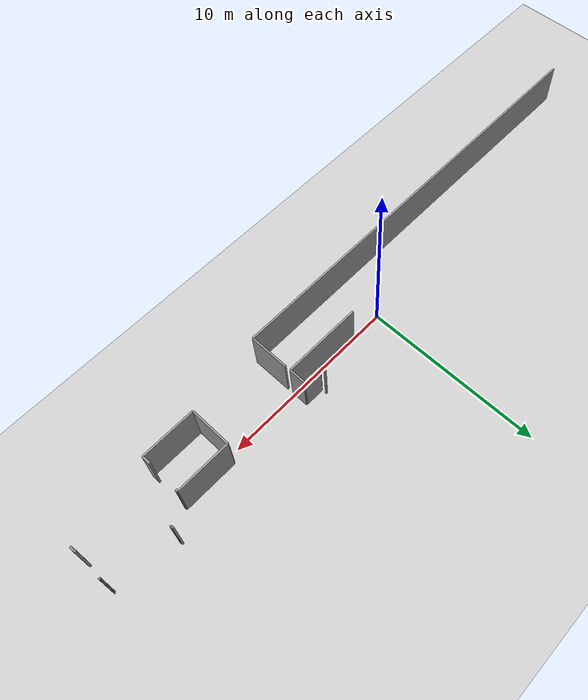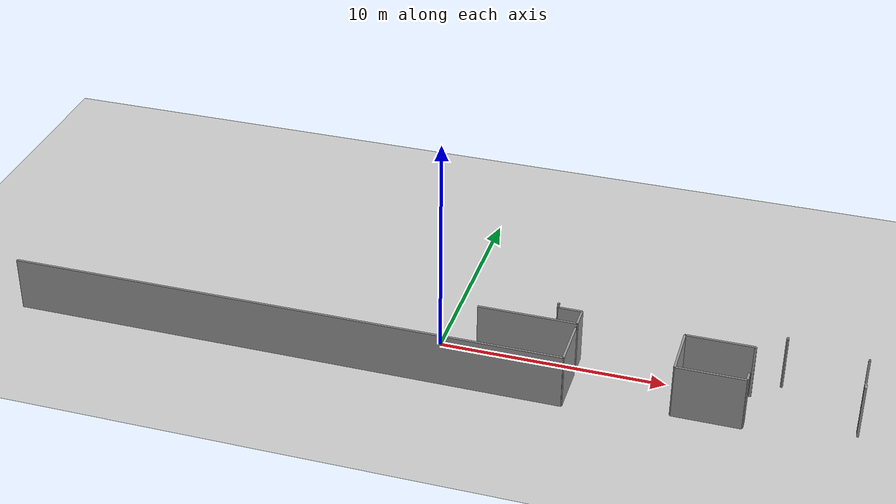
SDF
<sdf version="1.6">
 <world name="default">
  <model name="ground_plane">
   <static>1</static>
   <link name="link">
    <collision name="collision">
     <geometry><plane><normal>0 0 1</normal><size>100 100</size></plane></geometry>
     <surface><friction><ode><mu>100</mu><mu2>50</mu2></ode></friction></surface>
    </collision>
    <visual name="visual">
     <cast_shadows>0</cast_shadows>
     <geometry><plane><normal>0 0 1</normal><size>100 100</size></plane></geometry>
     <material>
      <script><uri>file://media/materials/scripts/gazebo.material</uri><name>Gazebo/Grey</name></script>
     </material>
    </visual>
   </link>
  </model>
  <model name="0510032259_A_40_1_101">
   <static>1</static>
   <link name="Wall_77">
    <collision name="Wall_77_Collision">
     <geometry><box><size>0.0627612404873 0.1 2.5</size></box></geometry>
     <pose>0.0313806202437 0 1.25 0 0 0</pose>
    </collision>
    <visual name="Wall_77_Visual">
     <pose>0.0313806202437 0 1.25 0 0 0</pose>
     <geometry><box><size>0.0627612404873 0.1 2.5</size></box></geometry>
     <material>
      <script><uri>file://media/materials/scripts/gazebo.material</uri><name>Gazebo/Grey</name></script>
      <ambient>1 1 1 1</ambient>
     </material>
    </visual>
    <pose>44.9132903914 -19.7528934965 0 0 0 3.14159265359</pose>
   </link>
   <link name="Wall_78">
    <collision name="Wall_78_Collision">
     <geometry><box><size>0.140005844164 0.1 2.5</size></box></geometry>
     <pose>0.070002922082 0 1.25 0 0 0</pose>
    </collision>
    <visual name="Wall_78_Visual">
     <pose>0.070002922082 0 1.25 0 0 0</pose>
     <geometry><box><size>0.140005844164 0.1 2.5</size></box></geometry>
     <material>
      <script><uri>file://media/materials/scripts/gazebo.material</uri><name>Gazebo/Grey</name></script>
      <ambient>1 1 1 1</ambient>
     </material>
    </visual>
    <pose>44.8505291509 -19.7528934965 0 0 0 1.57079632679</pose>
   </link>
   <link name="Wall_87">
    <collision name="Wall_87_Collision">
     <geometry><box><size>0.0895681670923 0.1 2.5</size></box></geometry>
     <pose>0.0447840835461 0 1.25 0 0 0</pose>
    </collision>
    <visual name="Wall_87_Visual">
     <pose>0.0447840835461 0 1.25 0 0 0</pose>
     <geometry><box><size>0.0895681670923 0.1 2.5</size></box></geometry>
     <material>
      <script><uri>file://media/materials/scripts/gazebo.material</uri><name>Gazebo/Grey</name></script>
      <ambient>1 1 1 1</ambient>
     </material>
    </visual>
    <pose>35.1539174956 -20.0020327527 0 0 0 3.14159265359</pose>
   </link>
   <link name="Wall_294">
    <collision name="Wall_294_Collision">
     <geometry><box><size>0.0168972570543 0.1 2.5</size></box></geometry>
     <pose>0.00844862852714 0 1.25 0 0 0</pose>
    </collision>
    <visual name="Wall_294_Visual">
     <pose>0.00844862852714 0 1.25 0 0 0</pose>
     <geometry><box><size>0.0168972570543 0.1 2.5</size></box></geometry>
     <material>
      <script><uri>file://media/materials/scripts/gazebo.material</uri><name>Gazebo/Grey</name></script>
      <ambient>1 1 1 1</ambient>
     </material>
    </visual>
    <pose>35.1555691072 -20.2709913481 0 0 0 -1.57079632679</pose>
   </link>
   <link name="Wall_295">
    <collision name="Wall_295_Collision">
     <geometry><box><size>1.04597832577 0.1 2.5</size></box></geometry>
     <pose>0.522989162887 0 1.25 0 0 0</pose>
    </collision>
    <visual name="Wall_295_Visual">
     <pose>0.522989162887 0 1.25 0 0 0</pose>
     <geometry><box><size>1.04597832577 0.1 2.5</size></box></geometry>
     <material>
      <script><uri>file://media/materials/scripts/gazebo.material</uri><name>Gazebo/Grey</name></script>
      <ambient>1 1 1 1</ambient>
     </material>
    </visual>
    <pose>35.1555691072 -20.2878886052 0 0 0 0.0</pose>
   </link>
   <link name="Wall_296">
    <collision name="Wall_296_Collision">
     <geometry><box><size>0.936590819581 0.1 2.5</size></box></geometry>
     <pose>0.46829540979 0 1.25 0 0 0</pose>
    </collision>
    <visual name="Wall_296_Visual">
     <pose>0.46829540979 0 1.25 0 0 0</pose>
     <geometry><box><size>0.936590819581 0.1 2.5</size></box></geometry>
     <material>
      <script><uri>file://media/materials/scripts/gazebo.material</uri><name>Gazebo/Grey</name></script>
      <ambient>1 1 1 1</ambient>
     </material>
    </visual>
    <pose>36.201547433 -20.2878886052 0 0 0 -1.57079632679</pose>
   </link>
   <link name="Wall_297">
    <collision name="Wall_297_Collision">
     <geometry><box><size>4.36063885454 0.1 2.5</size></box></geometry>
     <pose>2.18031942727 0 1.25 0 0 0</pose>
    </collision>
    <visual name="Wall_297_Visual">
     <pose>2.18031942727 0 1.25 0 0 0</pose>
     <geometry><box><size>4.36063885454 0.1 2.5</size></box></geometry>
     <material>
      <script><uri>file://media/materials/scripts/gazebo.material</uri><name>Gazebo/Grey</name></script>
      <ambient>1 1 1 1</ambient>
     </material>
    </visual>
    <pose>36.201547433 -21.2244794247 0 0 0 3.14039811988</pose>
   </link>
   <link name="Wall_304">
    <collision name="Wall_304_Collision">
     <geometry><box><size>2.23590095412 0.1 2.5</size></box></geometry>
     <pose>1.11795047706 0 1.25 0 0 0</pose>
    </collision>
    <visual name="Wall_304_Visual">
     <pose>1.11795047706 0 1.25 0 0 0</pose>
     <geometry><box><size>2.23590095412 0.1 2.5</size></box></geometry>
     <material>
      <script><uri>file://media/materials/scripts/gazebo.material</uri><name>Gazebo/Grey</name></script>
      <ambient>1 1 1 1</ambient>
     </material>
    </visual>
    <pose>36.2092973028 -21.5310439456 0 0 0 -1.57079632679</pose>
   </link>
   <link name="Wall_305">
    <collision name="Wall_305_Collision">
     <geometry><box><size>24.962330551 0.1 2.5</size></box></geometry>
     <pose>12.4811652755 0 1.25 0 0 0</pose>
    </collision>
    <visual name="Wall_305_Visual">
     <pose>12.4811652755 0 1.25 0 0 0</pose>
     <geometry><box><size>24.962330551 0.1 2.5</size></box></geometry>
     <material>
      <script><uri>file://media/materials/scripts/gazebo.material</uri><name>Gazebo/Grey</name></script>
      <ambient>1 1 1 1</ambient>
     </material>
    </visual>
    <pose>36.2092973028 -23.7669448997 0 0 0 3.14159265359</pose>
   </link>
   <link name="Wall_315">
    <collision name="Wall_315_Collision">
     <geometry><box><size>2.34884577759 0.1 2.5</size></box></geometry>
     <pose>1.1744228888 0 1.25 0 0 0</pose>
    </collision>
    <visual name="Wall_315_Visual">
     <pose>1.1744228888 0 1.25 0 0 0</pose>
     <geometry><box><size>2.34884577759 0.1 2.5</size></box></geometry>
     <material>
      <script><uri>file://media/materials/scripts/gazebo.material</uri><name>Gazebo/Grey</name></script>
      <ambient>1 1 1 1</ambient>
     </material>
    </visual>
    <pose>40.700664456 -23.0486209043 0 0 0 1.57079632679</pose>
   </link>
   <link name="Wall_316">
    <collision name="Wall_316_Collision">
     <geometry><box><size>2.9698517361 0.1 2.5</size></box></geometry>
     <pose>1.48492586805 0 1.25 0 0 0</pose>
    </collision>
    <visual name="Wall_316_Visual">
     <pose>1.48492586805 0 1.25 0 0 0</pose>
     <geometry><box><size>2.9698517361 0.1 2.5</size></box></geometry>
     <material>
      <script><uri>file://media/materials/scripts/gazebo.material</uri><name>Gazebo/Grey</name></script>
      <ambient>1 1 1 1</ambient>
     </material>
    </visual>
    <pose>40.700664456 -20.6997751267 0 0 0 0.0</pose>
   </link>
   <link name="Wall_317">
    <collision name="Wall_317_Collision">
     <geometry><box><size>0.123489728246 0.1 2.5</size></box></geometry>
     <pose>0.0617448641232 0 1.25 0 0 0</pose>
    </collision>
    <visual name="Wall_317_Visual">
     <pose>0.0617448641232 0 1.25 0 0 0</pose>
     <geometry><box><size>0.123489728246 0.1 2.5</size></box></geometry>
     <material>
      <script><uri>file://media/materials/scripts/gazebo.material</uri><name>Gazebo/Grey</name></script>
      <ambient>1 1 1 1</ambient>
     </material>
    </visual>
    <pose>43.6705161921 -20.6997751267 0 0 0 -1.57079632679</pose>
   </link>
   <link name="Wall_318">
    <collision name="Wall_318_Collision">
     <geometry><box><size>0.487098372527 0.1 2.5</size></box></geometry>
     <pose>0.243549186264 0 1.25 0 0 0</pose>
    </collision>
    <visual name="Wall_318_Visual">
     <pose>0.243549186264 0 1.25 0 0 0</pose>
     <geometry><box><size>0.487098372527 0.1 2.5</size></box></geometry>
     <material>
      <script><uri>file://media/materials/scripts/gazebo.material</uri><name>Gazebo/Grey</name></script>
      <ambient>1 1 1 1</ambient>
     </material>
    </visual>
    <pose>43.6705161921 -22.5662232725 0 0 0 -1.57079632679</pose>
   </link>
   <link name="Wall_319">
    <collision name="Wall_319_Collision">
     <geometry><box><size>2.96985545631 0.1 2.5</size></box></geometry>
     <pose>1.48492772815 0 1.25 0 0 0</pose>
    </collision>
    <visual name="Wall_319_Visual">
     <pose>1.48492772815 0 1.25 0 0 0</pose>
     <geometry><box><size>2.96985545631 0.1 2.5</size></box></geometry>
     <material>
      <script><uri>file://media/materials/scripts/gazebo.material</uri><name>Gazebo/Grey</name></script>
      <ambient>1 1 1 1</ambient>
     </material>
    </visual>
    <pose>43.6705161921 -23.053321645 0 0 0 3.14000983493</pose>
   </link>
   <link name="Wall_321">
    <collision name="Wall_321_Collision">
     <geometry><box><size>0.247233550584 0.1 2.5</size></box></geometry>
     <pose>0.123616775292 0 1.25 0 0 0</pose>
    </collision>
    <visual name="Wall_321_Visual">
     <pose>0.123616775292 0 1.25 0 0 0</pose>
     <geometry><box><size>0.247233550584 0.1 2.5</size></box></geometry>
     <material>
      <script><uri>file://media/materials/scripts/gazebo.material</uri><name>Gazebo/Grey</name></script>
      <ambient>1 1 1 1</ambient>
     </material>
    </visual>
    <pose>48.2866435441 -22.2320895428 0 0 0 1.57079632679</pose>
   </link>
   <link name="Wall_323">
    <collision name="Wall_323_Collision">
     <geometry><box><size>0.104305624373 0.1 2.5</size></box></geometry>
     <pose>0.0521528121863 0 1.25 0 0 0</pose>
    </collision>
    <visual name="Wall_323_Visual">
     <pose>0.0521528121863 0 1.25 0 0 0</pose>
     <geometry><box><size>0.104305624373 0.1 2.5</size></box></geometry>
     <material>
      <script><uri>file://media/materials/scripts/gazebo.material</uri><name>Gazebo/Grey</name></script>
      <ambient>1 1 1 1</ambient>
     </material>
    </visual>
    <pose>48.2646644052 -21.9848559922 0 0 0 1.57079632679</pose>
   </link>
   <link name="Wall_324">
    <collision name="Wall_324_Collision">
     <geometry><box><size>0.0988426014153 0.1 2.5</size></box></geometry>
     <pose>0.0494213007076 0 1.25 0 0 0</pose>
    </collision>
    <visual name="Wall_324_Visual">
     <pose>0.0494213007076 0 1.25 0 0 0</pose>
     <geometry><box><size>0.0988426014153 0.1 2.5</size></box></geometry>
     <material>
      <script><uri>file://media/materials/scripts/gazebo.material</uri><name>Gazebo/Grey</name></script>
      <ambient>1 1 1 1</ambient>
     </material>
    </visual>
    <pose>48.2646644052 -20.3261297659 0 0 0 1.57079632679</pose>
   </link>
   <link name="Wall_325">
    <collision name="Wall_325_Collision">
     <geometry><box><size>0.0384952547929 0.1 2.5</size></box></geometry>
     <pose>0.0192476273964 0 1.25 0 0 0</pose>
    </collision>
    <visual name="Wall_325_Visual">
     <pose>0.0192476273964 0 1.25 0 0 0</pose>
     <geometry><box><size>0.0384952547929 0.1 2.5</size></box></geometry>
     <material>
      <script><uri>file://media/materials/scripts/gazebo.material</uri><name>Gazebo/Grey</name></script>
      <ambient>1 1 1 1</ambient>
     </material>
    </visual>
    <pose>48.2646644052 -20.2272871644 0 0 0 0.0</pose>
   </link>
   <pose>-30.15 21.0617302537 0 0 0 0</pose>
  </model>
 </world>
</sdf>
